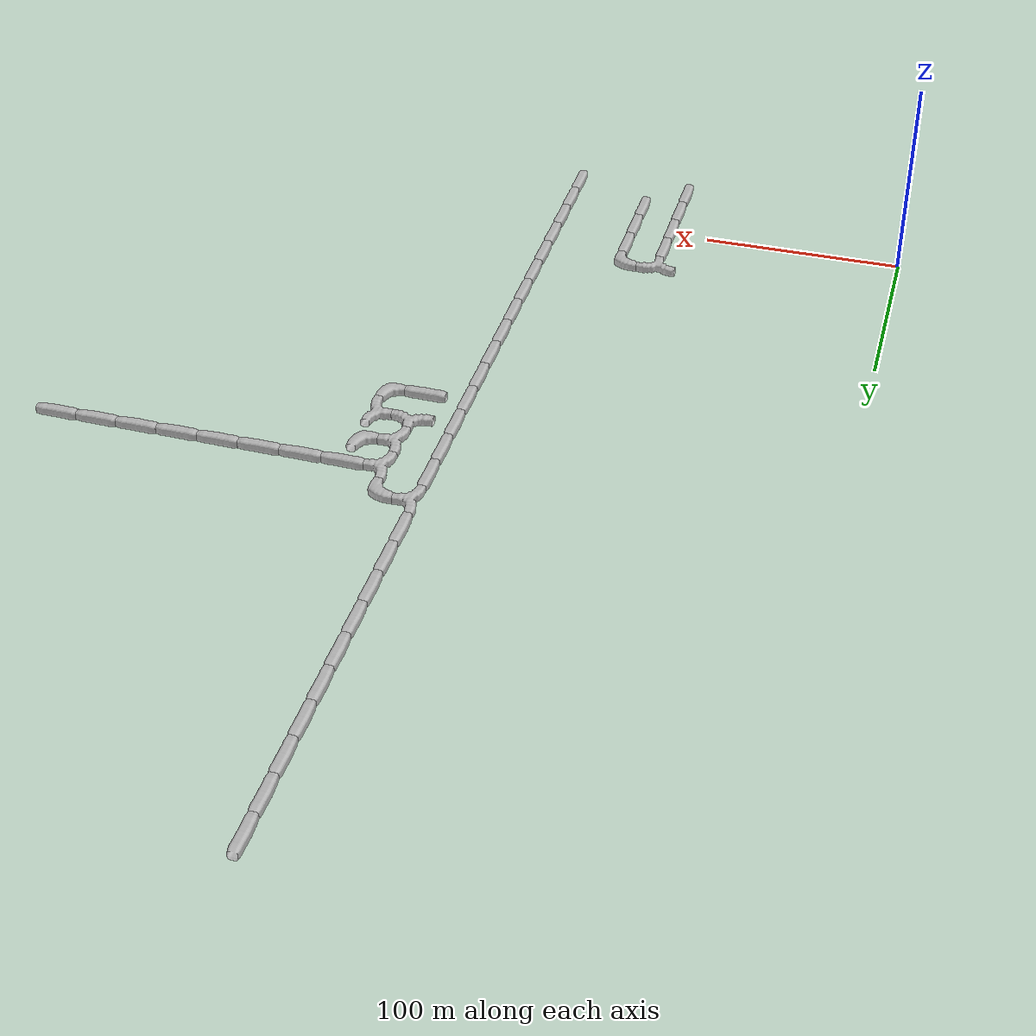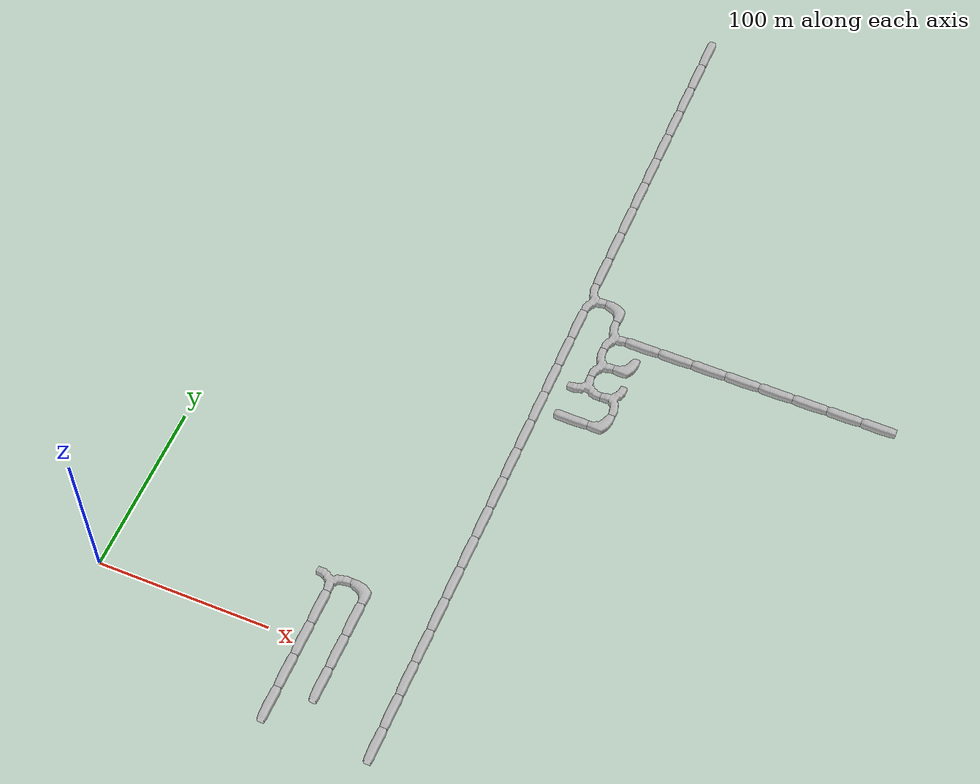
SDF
<sdf version="1.6">
 <world name="cave_16000_0">
  <include>
   <static>true</static>
   <name>cave_6_2</name>
   <pose>120 40 0 0 0 3.141592653589793</pose>
   <uri>model://cave_3way_20m</uri>
  </include>
  <include>
   <static>true</static>
   <name>cave_7_2</name>
   <pose>140 40 0 0 0 3.141592653589793</pose>
   <uri>model://cave_L_20m</uri>
  </include>
  <include>
   <static>true</static>
   <name>cave_7_1</name>
   <pose>140 20 0 0 0 0.0</pose>
   <uri>model://cave_straight_20m</uri>
  </include>
  <include>
   <static>true</static>
   <name>cave_7_0</name>
   <pose>140 0 0 0 0 0.0</pose>
   <uri>model://cave_straight_20m</uri>
  </include>
  <include>
   <static>true</static>
   <name>cave_7_-1</name>
   <pose>140 -20 0 0 0 0.0</pose>
   <uri>model://cave_straight_20m</uri>
  </include>
  <include>
   <static>true</static>
   <name>cave_9_-2</name>
   <pose>180 -40 0 0 0 0.0</pose>
   <uri>model://cave_straight_20m</uri>
  </include>
  <include>
   <static>true</static>
   <name>cave_9_-1</name>
   <pose>180 -20 0 0 0 0.0</pose>
   <uri>model://cave_straight_20m</uri>
  </include>
  <include>
   <static>true</static>
   <name>cave_9_0</name>
   <pose>180 0 0 0 0 0.0</pose>
   <uri>model://cave_straight_20m</uri>
  </include>
  <include>
   <static>true</static>
   <name>cave_9_1</name>
   <pose>180 20 0 0 0 0.0</pose>
   <uri>model://cave_straight_20m</uri>
  </include>
  <include>
   <static>true</static>
   <name>cave_9_2</name>
   <pose>180 40 0 0 0 0.0</pose>
   <uri>model://cave_straight_20m</uri>
  </include>
  <include>
   <static>true</static>
   <name>cave_9_3</name>
   <pose>180 60 0 0 0 0.0</pose>
   <uri>model://cave_straight_20m</uri>
  </include>
  <include>
   <static>true</static>
   <name>cave_9_4</name>
   <pose>180 80 0 0 0 0.0</pose>
   <uri>model://cave_straight_20m</uri>
  </include>
  <include>
   <static>true</static>
   <name>cave_9_5</name>
   <pose>180 100 0 0 0 0.0</pose>
   <uri>model://cave_straight_20m</uri>
  </include>
  <include>
   <static>true</static>
   <name>cave_9_6</name>
   <pose>180 120 0 0 0 0.0</pose>
   <uri>model://cave_straight_20m</uri>
  </include>
  <include>
   <static>true</static>
   <name>cave_9_7</name>
   <pose>180 140 0 0 0 0.0</pose>
   <uri>model://cave_straight_20m</uri>
  </include>
  <include>
   <static>true</static>
   <name>cave_9_8</name>
   <pose>180 160 0 0 0 0.0</pose>
   <uri>model://cave_straight_20m</uri>
  </include>
  <include>
   <static>true</static>
   <name>cave_9_9</name>
   <pose>180 180 0 0 0 0.0</pose>
   <uri>model://cave_straight_20m</uri>
  </include>
  <include>
   <static>true</static>
   <name>cave_9_10</name>
   <pose>180 200 0 0 0 0.0</pose>
   <uri>model://cave_straight_20m</uri>
  </include>
  <include>
   <static>true</static>
   <name>cave_9_11</name>
   <pose>180 220 0 0 0 0.0</pose>
   <uri>model://cave_straight_20m</uri>
  </include>
  <include>
   <static>true</static>
   <name>cave_9_12</name>
   <pose>180 240 0 0 0 0.0</pose>
   <uri>model://cave_straight_20m</uri>
  </include>
  <include>
   <static>true</static>
   <name>cave_9_13</name>
   <pose>180 260 0 0 0 -1.5707963267948966</pose>
   <uri>model://cave_3way_20m</uri>
  </include>
  <include>
   <static>true</static>
   <name>cave_10_13</name>
   <pose>200 260 0 0 0 3.141592653589793</pose>
   <uri>model://cave_L_20m</uri>
  </include>
  <include>
   <static>true</static>
   <name>cave_10_12</name>
   <pose>200 240 0 0 0 -1.5707963267948966</pose>
   <uri>model://cave_3way_20m</uri>
  </include>
  <include>
   <static>true</static>
   <name>cave_11_12</name>
   <pose>220 240 0 0 0 1.5707963267948966</pose>
   <uri>model://cave_straight_20m</uri>
  </include>
  <include>
   <static>true</static>
   <name>cave_12_12</name>
   <pose>240 240 0 0 0 1.5707963267948966</pose>
   <uri>model://cave_straight_20m</uri>
  </include>
  <include>
   <static>true</static>
   <name>cave_13_12</name>
   <pose>260 240 0 0 0 1.5707963267948966</pose>
   <uri>model://cave_straight_20m</uri>
  </include>
  <include>
   <static>true</static>
   <name>cave_14_12</name>
   <pose>280 240 0 0 0 1.5707963267948966</pose>
   <uri>model://cave_straight_20m</uri>
  </include>
  <include>
   <static>true</static>
   <name>cave_15_12</name>
   <pose>300 240 0 0 0 1.5707963267948966</pose>
   <uri>model://cave_straight_20m</uri>
  </include>
  <include>
   <static>true</static>
   <name>cave_16_12</name>
   <pose>320 240 0 0 0 1.5707963267948966</pose>
   <uri>model://cave_straight_20m</uri>
  </include>
  <include>
   <static>true</static>
   <name>cave_17_12</name>
   <pose>340 240 0 0 0 1.5707963267948966</pose>
   <uri>model://cave_straight_20m</uri>
  </include>
  <include>
   <static>true</static>
   <name>cave_18_12</name>
   <pose>360 240 0 0 0 1.5707963267948966</pose>
   <uri>model://cave_straight_20m</uri>
  </include>
  <include>
   <static>true</static>
   <name>cave_10_11</name>
   <pose>200 220 0 0 0 -1.5707963267948966</pose>
   <uri>model://cave_3way_20m</uri>
  </include>
  <include>
   <static>true</static>
   <name>cave_11_11</name>
   <pose>220 220 0 0 0 1.5707963267948966</pose>
   <uri>model://cave_L_20m</uri>
  </include>
  <include>
   <static>true</static>
   <name>cave_10_10</name>
   <pose>200 200 0 0 0 0.0</pose>
   <uri>model://cave_3way_20m</uri>
  </include>
  <include>
   <static>true</static>
   <name>cave_11_10</name>
   <pose>220 200 0 0 0 1.5707963267948966</pose>
   <uri>model://cave_3way_20m</uri>
  </include>
  <include>
   <static>true</static>
   <name>cave_11_9</name>
   <pose>220 180 0 0 0 1.5707963267948966</pose>
   <uri>model://cave_L_20m</uri>
  </include>
  <include>
   <static>true</static>
   <name>cave_10_9</name>
   <pose>200 180 0 0 0 1.5707963267948966</pose>
   <uri>model://cave_straight_20m</uri>
  </include>
  <include>
   <static>true</static>
   <name>cave_9_14</name>
   <pose>180 280 0 0 0 0.0</pose>
   <uri>model://cave_straight_20m</uri>
  </include>
  <include>
   <static>true</static>
   <name>cave_9_15</name>
   <pose>180 300 0 0 0 0.0</pose>
   <uri>model://cave_straight_20m</uri>
  </include>
  <include>
   <static>true</static>
   <name>cave_9_16</name>
   <pose>180 320 0 0 0 0.0</pose>
   <uri>model://cave_straight_20m</uri>
  </include>
  <include>
   <static>true</static>
   <name>cave_9_17</name>
   <pose>180 340 0 0 0 0.0</pose>
   <uri>model://cave_straight_20m</uri>
  </include>
  <include>
   <static>true</static>
   <name>cave_9_18</name>
   <pose>180 360 0 0 0 0.0</pose>
   <uri>model://cave_straight_20m</uri>
  </include>
  <include>
   <static>true</static>
   <name>cave_9_19</name>
   <pose>180 380 0 0 0 0.0</pose>
   <uri>model://cave_straight_20m</uri>
  </include>
  <include>
   <static>true</static>
   <name>cave_9_20</name>
   <pose>180 400 0 0 0 0.0</pose>
   <uri>model://cave_straight_20m</uri>
  </include>
  <include>
   <static>true</static>
   <name>cave_9_21</name>
   <pose>180 420 0 0 0 0.0</pose>
   <uri>model://cave_straight_20m</uri>
  </include>
  <include>
   <static>true</static>
   <name>cave_9_22</name>
   <pose>180 440 0 0 0 0.0</pose>
   <uri>model://cave_straight_20m</uri>
  </include>
  <include>
   <static>true</static>
   <name>cave_9_23</name>
   <pose>180 460 0 0 0 0.0</pose>
   <uri>model://cave_straight_20m</uri>
  </include>
  <include>
   <static>true</static>
   <name>cave_6_1</name>
   <pose>120 20 0 0 0 0.0</pose>
   <uri>model://cave_straight_20m</uri>
  </include>
  <include>
   <static>true</static>
   <name>cave_6_0</name>
   <pose>120 0 0 0 0 0.0</pose>
   <uri>model://cave_straight_20m</uri>
  </include>
  <include>
   <static>true</static>
   <name>cave_6_-1</name>
   <pose>120 -20 0 0 0 0.0</pose>
   <uri>model://cave_straight_20m</uri>
  </include>
  <include>
   <static>true</static>
   <name>cave_6_-2</name>
   <pose>120 -40 0 0 0 0.0</pose>
   <uri>model://cave_straight_20m</uri>
  </include>
 </world>
</sdf>
